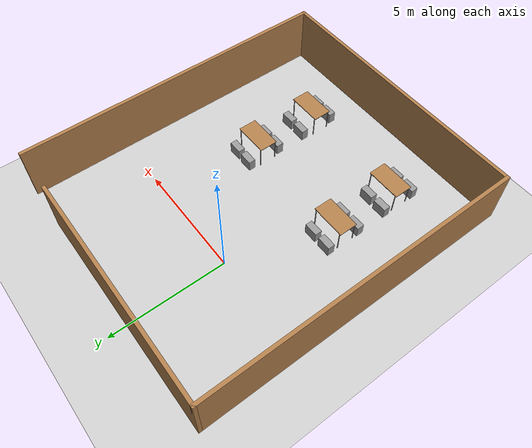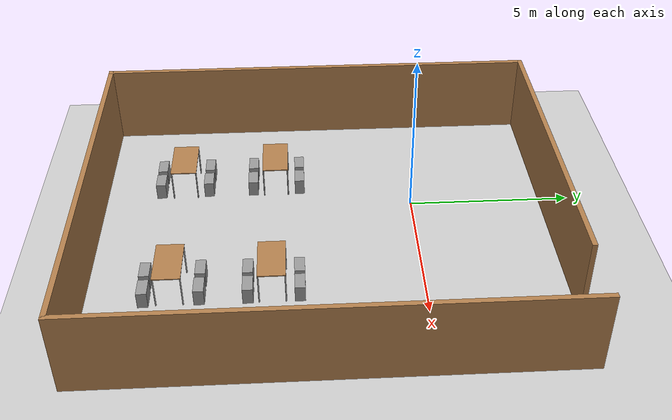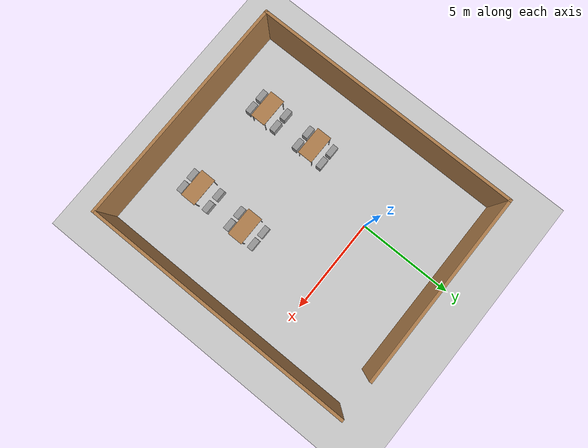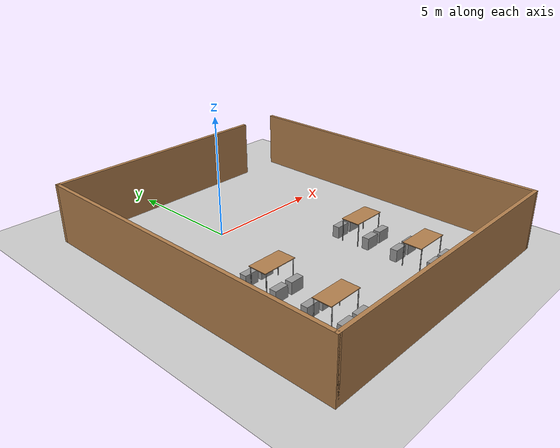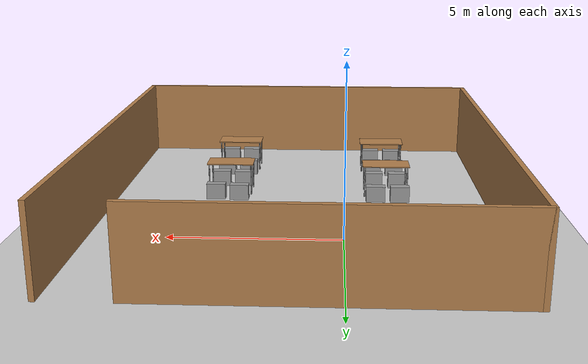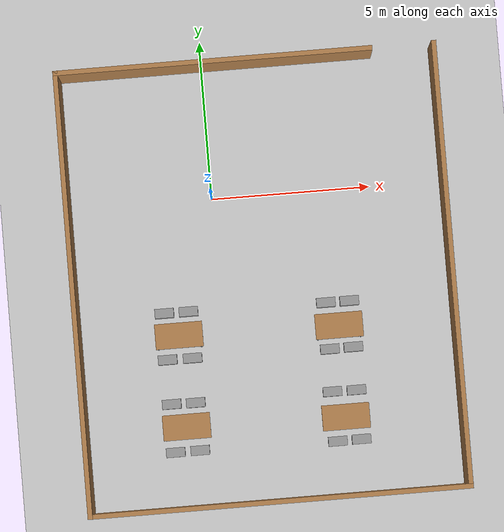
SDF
<sdf version="1.7">
 <world name="default">
  <model name="ground_plane">
   <static>1</static>
   <link name="link">
    <collision name="collision">
     <geometry><plane><normal>0 0 1</normal><size>100 100</size></plane></geometry>
     <surface><friction><ode><mu>100</mu><mu2>50</mu2></ode></friction></surface>
    </collision>
    <visual name="visual">
     <cast_shadows>0</cast_shadows>
     <geometry><plane><normal>0 0 1</normal><size>100 100</size></plane></geometry>
     <material>
      <script><uri>file://media/materials/scripts/gazebo.material</uri><name>Gazebo/Grey</name></script>
     </material>
    </visual>
   </link>
  </model>
  <model name="restaurent_walls">
   <pose>1.37943 -2.77335 0 0 -0 0</pose>
   <link name="Wall_2">
    <collision name="Wall_2_Collision">
     <geometry><box><size>10 0.15 2.5</size></box></geometry>
     <pose>0 0 1.25 0 -0 0</pose>
    </collision>
    <visual name="Wall_2_Visual">
     <pose>0 0 1.25 0 -0 0</pose>
     <geometry><box><size>10 0.15 2.5</size></box></geometry>
     <material>
      <script><uri>file://media/materials/scripts/gazebo.material</uri><name>Gazebo/Wood</name></script>
      <ambient>1 1 1 1</ambient>
     </material>
     <meta><layer>0</layer></meta>
    </visual>
    <pose>-1 6.925 0 0 -0 0</pose>
   </link>
   <link name="Wall_4">
    <collision name="Wall_4_Collision">
     <geometry><box><size>14 0.15 2.5</size></box></geometry>
     <pose>0 0 1.25 0 -0 0</pose>
    </collision>
    <visual name="Wall_4_Visual">
     <pose>0 0 1.25 0 -0 0</pose>
     <geometry><box><size>14 0.15 2.5</size></box></geometry>
     <material>
      <script><uri>file://media/materials/scripts/gazebo.material</uri><name>Gazebo/Wood</name></script>
      <ambient>1 1 1 1</ambient>
     </material>
     <meta><layer>0</layer></meta>
    </visual>
    <pose>-5.925 -0 0 0 -0 -1.5708</pose>
   </link>
   <link name="Wall_5">
    <collision name="Wall_5_Collision">
     <geometry><box><size>12 0.15 2.5</size></box></geometry>
     <pose>0 0 1.25 0 -0 0</pose>
    </collision>
    <visual name="Wall_5_Visual">
     <pose>0 0 1.25 0 -0 0</pose>
     <geometry><box><size>12 0.15 2.5</size></box></geometry>
     <material>
      <script><uri>file://media/materials/scripts/gazebo.material</uri><name>Gazebo/Wood</name></script>
      <ambient>1 1 1 1</ambient>
     </material>
     <meta><layer>0</layer></meta>
    </visual>
    <pose>-0 -6.925 0 0 -0 0</pose>
   </link>
   <link name="Wall_6">
    <collision name="Wall_6_Collision">
     <geometry><box><size>14 0.15 2.5</size></box></geometry>
     <pose>0 0 1.25 0 -0 0</pose>
    </collision>
    <visual name="Wall_6_Visual">
     <pose>0 0 1.25 0 -0 0</pose>
     <geometry><box><size>14 0.15 2.5</size></box></geometry>
     <material>
      <script><uri>file://media/materials/scripts/gazebo.material</uri><name>Gazebo/Wood</name></script>
      <ambient>1 1 1 1</ambient>
     </material>
     <meta><layer>0</layer></meta>
    </visual>
    <pose>5.925 -0 0 0 -0 1.5708</pose>
   </link>
   <static>1</static>
  </model>
  <model name="table_1">
   <static>1</static>
   <link name="link">
    <collision name="surface">
     <pose>0 0 1 0 -0 0</pose>
     <geometry><box><size>1.5 0.8 0.03</size></box></geometry>
     <surface><friction><ode><mu>0.6</mu><mu2>0.6</mu2></ode></friction></surface>
    </collision>
    <visual name="visual1">
     <pose>0 0 1 0 -0 0</pose>
     <geometry><box><size>1.5 0.8 0.03</size></box></geometry>
     <material>
      <script><uri>file://media/materials/scripts/gazebo.material</uri><name>Gazebo/Wood</name></script>
     </material>
    </visual>
    <collision name="front_left_leg">
     <pose>0.68 0.38 0.5 0 -0 0</pose>
     <geometry><cylinder><radius>0.02</radius><length>1</length></cylinder></geometry>
    </collision>
    <visual name="front_left_leg">
     <pose>0.68 0.38 0.5 0 -0 0</pose>
     <geometry><cylinder><radius>0.02</radius><length>1</length></cylinder></geometry>
     <material>
      <script><uri>file://media/materials/scripts/gazebo.material</uri><name>Gazebo/Grey</name></script>
     </material>
    </visual>
    <collision name="front_right_leg">
     <pose>0.68 -0.38 0.5 0 -0 0</pose>
     <geometry><cylinder><radius>0.02</radius><length>1</length></cylinder></geometry>
    </collision>
    <visual name="front_right_leg">
     <pose>0.68 -0.38 0.5 0 -0 0</pose>
     <geometry><cylinder><radius>0.02</radius><length>1</length></cylinder></geometry>
     <material>
      <script><uri>file://media/materials/scripts/gazebo.material</uri><name>Gazebo/Grey</name></script>
     </material>
    </visual>
    <collision name="back_right_leg">
     <pose>-0.68 -0.38 0.5 0 -0 0</pose>
     <geometry><cylinder><radius>0.02</radius><length>1</length></cylinder></geometry>
    </collision>
    <visual name="back_right_leg">
     <pose>-0.68 -0.38 0.5 0 -0 0</pose>
     <geometry><cylinder><radius>0.02</radius><length>1</length></cylinder></geometry>
     <material>
      <script><uri>file://media/materials/scripts/gazebo.material</uri><name>Gazebo/Grey</name></script>
     </material>
    </visual>
    <collision name="back_left_leg">
     <pose>-0.68 0.38 0.5 0 -0 0</pose>
     <geometry><cylinder><radius>0.02</radius><length>1</length></cylinder></geometry>
    </collision>
    <visual name="back_left_leg">
     <pose>-0.68 0.38 0.5 0 -0 0</pose>
     <geometry><cylinder><radius>0.02</radius><length>1</length></cylinder></geometry>
     <material>
      <script><uri>file://media/materials/scripts/gazebo.material</uri><name>Gazebo/Grey</name></script>
     </material>
    </visual>
   </link>
   <pose>-1.37961 -4.25534 0 0 -0 0</pose>
  </model>
  <model name="table_2">
   <static>1</static>
   <link name="link">
    <collision name="surface">
     <pose>0 0 1 0 -0 0</pose>
     <geometry><box><size>1.5 0.8 0.03</size></box></geometry>
     <surface><friction><ode><mu>0.6</mu><mu2>0.6</mu2></ode></friction></surface>
    </collision>
    <visual name="visual1">
     <pose>0 0 1 0 -0 0</pose>
     <geometry><box><size>1.5 0.8 0.03</size></box></geometry>
     <material>
      <script><uri>file://media/materials/scripts/gazebo.material</uri><name>Gazebo/Wood</name></script>
     </material>
    </visual>
    <collision name="front_left_leg">
     <pose>0.68 0.38 0.5 0 -0 0</pose>
     <geometry><cylinder><radius>0.02</radius><length>1</length></cylinder></geometry>
    </collision>
    <visual name="front_left_leg">
     <pose>0.68 0.38 0.5 0 -0 0</pose>
     <geometry><cylinder><radius>0.02</radius><length>1</length></cylinder></geometry>
     <material>
      <script><uri>file://media/materials/scripts/gazebo.material</uri><name>Gazebo/Grey</name></script>
     </material>
    </visual>
    <collision name="front_right_leg">
     <pose>0.68 -0.38 0.5 0 -0 0</pose>
     <geometry><cylinder><radius>0.02</radius><length>1</length></cylinder></geometry>
    </collision>
    <visual name="front_right_leg">
     <pose>0.68 -0.38 0.5 0 -0 0</pose>
     <geometry><cylinder><radius>0.02</radius><length>1</length></cylinder></geometry>
     <material>
      <script><uri>file://media/materials/scripts/gazebo.material</uri><name>Gazebo/Grey</name></script>
     </material>
    </visual>
    <collision name="back_right_leg">
     <pose>-0.68 -0.38 0.5 0 -0 0</pose>
     <geometry><cylinder><radius>0.02</radius><length>1</length></cylinder></geometry>
    </collision>
    <visual name="back_right_leg">
     <pose>-0.68 -0.38 0.5 0 -0 0</pose>
     <geometry><cylinder><radius>0.02</radius><length>1</length></cylinder></geometry>
     <material>
      <script><uri>file://media/materials/scripts/gazebo.material</uri><name>Gazebo/Grey</name></script>
     </material>
    </visual>
    <collision name="back_left_leg">
     <pose>-0.68 0.38 0.5 0 -0 0</pose>
     <geometry><cylinder><radius>0.02</radius><length>1</length></cylinder></geometry>
    </collision>
    <visual name="back_left_leg">
     <pose>-0.68 0.38 0.5 0 -0 0</pose>
     <geometry><cylinder><radius>0.02</radius><length>1</length></cylinder></geometry>
     <material>
      <script><uri>file://media/materials/scripts/gazebo.material</uri><name>Gazebo/Grey</name></script>
     </material>
    </visual>
   </link>
   <pose>-1.36569 -7.13557 0 0 -0 0</pose>
  </model>
  <model name="table_5">
   <static>1</static>
   <link name="link">
    <collision name="surface">
     <pose>0 0 1 0 -0 0</pose>
     <geometry><box><size>1.5 0.8 0.03</size></box></geometry>
     <surface><friction><ode><mu>0.6</mu><mu2>0.6</mu2></ode></friction></surface>
    </collision>
    <visual name="visual1">
     <pose>0 0 1 0 -0 0</pose>
     <geometry><box><size>1.5 0.8 0.03</size></box></geometry>
     <material>
      <script><uri>file://media/materials/scripts/gazebo.material</uri><name>Gazebo/Wood</name></script>
     </material>
    </visual>
    <collision name="front_left_leg">
     <pose>0.68 0.38 0.5 0 -0 0</pose>
     <geometry><cylinder><radius>0.02</radius><length>1</length></cylinder></geometry>
    </collision>
    <visual name="front_left_leg">
     <pose>0.68 0.38 0.5 0 -0 0</pose>
     <geometry><cylinder><radius>0.02</radius><length>1</length></cylinder></geometry>
     <material>
      <script><uri>file://media/materials/scripts/gazebo.material</uri><name>Gazebo/Grey</name></script>
     </material>
    </visual>
    <collision name="front_right_leg">
     <pose>0.68 -0.38 0.5 0 -0 0</pose>
     <geometry><cylinder><radius>0.02</radius><length>1</length></cylinder></geometry>
    </collision>
    <visual name="front_right_leg">
     <pose>0.68 -0.38 0.5 0 -0 0</pose>
     <geometry><cylinder><radius>0.02</radius><length>1</length></cylinder></geometry>
     <material>
      <script><uri>file://media/materials/scripts/gazebo.material</uri><name>Gazebo/Grey</name></script>
     </material>
    </visual>
    <collision name="back_right_leg">
     <pose>-0.68 -0.38 0.5 0 -0 0</pose>
     <geometry><cylinder><radius>0.02</radius><length>1</length></cylinder></geometry>
    </collision>
    <visual name="back_right_leg">
     <pose>-0.68 -0.38 0.5 0 -0 0</pose>
     <geometry><cylinder><radius>0.02</radius><length>1</length></cylinder></geometry>
     <material>
      <script><uri>file://media/materials/scripts/gazebo.material</uri><name>Gazebo/Grey</name></script>
     </material>
    </visual>
    <collision name="back_left_leg">
     <pose>-0.68 0.38 0.5 0 -0 0</pose>
     <geometry><cylinder><radius>0.02</radius><length>1</length></cylinder></geometry>
    </collision>
    <visual name="back_left_leg">
     <pose>-0.68 0.38 0.5 0 -0 0</pose>
     <geometry><cylinder><radius>0.02</radius><length>1</length></cylinder></geometry>
     <material>
      <script><uri>file://media/materials/scripts/gazebo.material</uri><name>Gazebo/Grey</name></script>
     </material>
    </visual>
   </link>
   <pose>3.66552 -4.34774 0 0 -0 0</pose>
  </model>
  <model name="table_6">
   <static>1</static>
   <link name="link">
    <collision name="surface">
     <pose>0 0 1 0 -0 0</pose>
     <geometry><box><size>1.5 0.8 0.03</size></box></geometry>
     <surface><friction><ode><mu>0.6</mu><mu2>0.6</mu2></ode></friction></surface>
    </collision>
    <visual name="visual1">
     <pose>0 0 1 0 -0 0</pose>
     <geometry><box><size>1.5 0.8 0.03</size></box></geometry>
     <material>
      <script><uri>file://media/materials/scripts/gazebo.material</uri><name>Gazebo/Wood</name></script>
     </material>
    </visual>
    <collision name="front_left_leg">
     <pose>0.68 0.38 0.5 0 -0 0</pose>
     <geometry><cylinder><radius>0.02</radius><length>1</length></cylinder></geometry>
    </collision>
    <visual name="front_left_leg">
     <pose>0.68 0.38 0.5 0 -0 0</pose>
     <geometry><cylinder><radius>0.02</radius><length>1</length></cylinder></geometry>
     <material>
      <script><uri>file://media/materials/scripts/gazebo.material</uri><name>Gazebo/Grey</name></script>
     </material>
    </visual>
    <collision name="front_right_leg">
     <pose>0.68 -0.38 0.5 0 -0 0</pose>
     <geometry><cylinder><radius>0.02</radius><length>1</length></cylinder></geometry>
    </collision>
    <visual name="front_right_leg">
     <pose>0.68 -0.38 0.5 0 -0 0</pose>
     <geometry><cylinder><radius>0.02</radius><length>1</length></cylinder></geometry>
     <material>
      <script><uri>file://media/materials/scripts/gazebo.material</uri><name>Gazebo/Grey</name></script>
     </material>
    </visual>
    <collision name="back_right_leg">
     <pose>-0.68 -0.38 0.5 0 -0 0</pose>
     <geometry><cylinder><radius>0.02</radius><length>1</length></cylinder></geometry>
    </collision>
    <visual name="back_right_leg">
     <pose>-0.68 -0.38 0.5 0 -0 0</pose>
     <geometry><cylinder><radius>0.02</radius><length>1</length></cylinder></geometry>
     <material>
      <script><uri>file://media/materials/scripts/gazebo.material</uri><name>Gazebo/Grey</name></script>
     </material>
    </visual>
    <collision name="back_left_leg">
     <pose>-0.68 0.38 0.5 0 -0 0</pose>
     <geometry><cylinder><radius>0.02</radius><length>1</length></cylinder></geometry>
    </collision>
    <visual name="back_left_leg">
     <pose>-0.68 0.38 0.5 0 -0 0</pose>
     <geometry><cylinder><radius>0.02</radius><length>1</length></cylinder></geometry>
     <material>
      <script><uri>file://media/materials/scripts/gazebo.material</uri><name>Gazebo/Grey</name></script>
     </material>
    </visual>
   </link>
   <pose>3.64793 -7.22796 0 0 -0 0</pose>
  </model>
  <model name="chair">
   <link name="link">
    <inertial>
     <mass>1</mass>
     <inertia>
      <ixx>0.166667</ixx>
      <ixy>0</ixy>
      <ixz>0</ixz>
      <iyy>0.166667</iyy>
      <iyz>0</iyz>
      <izz>0.166667</izz>
     </inertia>
    </inertial>
    <visual name="visual">
     <geometry><box><size>0.6 0.3 0.5</size></box></geometry>
     <material>
      <script><name>Gazebo/Grey</name><uri>file://media/materials/scripts/gazebo.material</uri></script>
      <shader type="pixel"><normal_map>__default__</normal_map></shader>
      <ambient>0.3 0.3 0.3 1</ambient>
      <diffuse>0.7 0.7 0.7 1</diffuse>
      <specular>0.01 0.01 0.01 1</specular>
      <emissive>0.2 0.6 0 1</emissive>
     </material>
    </visual>
    <collision name="collision">
     <geometry><box><size>0.6 0.3 0.5</size></box></geometry>
     <surface>
      <friction>
       <ode><mu>1</mu><mu2>1</mu2><fdir1>0 0 0</fdir1><slip1>0</slip1><slip2>0</slip2></ode>
       <torsional>
        <coefficient>1</coefficient>
        <patch_radius>0</patch_radius>
        <surface_radius>0</surface_radius>
        <use_patch_radius>1</use_patch_radius>
        <ode><slip>0</slip></ode>
       </torsional>
      </friction>
      <bounce><restitution_coefficient>0</restitution_coefficient><threshold>1e+06</threshold></bounce>
      <contact>
       <collide_without_contact>0</collide_without_contact>
       <collide_without_contact_bitmask>1</collide_without_contact_bitmask>
       <collide_bitmask>1</collide_bitmask>
       <ode>
        <soft_cfm>0</soft_cfm>
        <soft_erp>0.2</soft_erp>
        <kp>1e+13</kp>
        <kd>1</kd>
        <max_vel>0.01</max_vel>
        <min_depth>0</min_depth>
       </ode>
       <bullet>
        <split_impulse>1</split_impulse>
        <split_impulse_penetration_threshold>-0.01</split_impulse_penetration_threshold>
        <soft_cfm>0</soft_cfm>
        <soft_erp>0.2</soft_erp>
        <kp>1e+13</kp>
        <kd>1</kd>
       </bullet>
      </contact>
     </surface>
    </collision>
   </link>
   <static>0</static>
   <pose>4.06254 -6.4022 0.241541 0 -0 0</pose>
  </model>
  <model name="chair_clone_2">
   <link name="link">
    <inertial>
     <mass>1</mass>
     <inertia>
      <ixx>0.166667</ixx>
      <ixy>0</ixy>
      <ixz>0</ixz>
      <iyy>0.166667</iyy>
      <iyz>0</iyz>
      <izz>0.166667</izz>
     </inertia>
    </inertial>
    <visual name="visual">
     <geometry><box><size>0.6 0.3 0.5</size></box></geometry>
     <material>
      <script><name>Gazebo/Grey</name><uri>file://media/materials/scripts/gazebo.material</uri></script>
      <shader type="pixel"><normal_map>__default__</normal_map></shader>
      <ambient>0.3 0.3 0.3 1</ambient>
      <diffuse>0.7 0.7 0.7 1</diffuse>
      <specular>0.01 0.01 0.01 1</specular>
      <emissive>0.2 0.6 0 1</emissive>
     </material>
    </visual>
    <collision name="collision">
     <geometry><box><size>0.6 0.3 0.5</size></box></geometry>
     <surface>
      <friction>
       <ode><mu>1</mu><mu2>1</mu2><fdir1>0 0 0</fdir1><slip1>0</slip1><slip2>0</slip2></ode>
       <torsional>
        <coefficient>1</coefficient>
        <patch_radius>0</patch_radius>
        <surface_radius>0</surface_radius>
        <use_patch_radius>1</use_patch_radius>
        <ode><slip>0</slip></ode>
       </torsional>
      </friction>
      <bounce><restitution_coefficient>0</restitution_coefficient><threshold>1e+06</threshold></bounce>
      <contact>
       <collide_without_contact>0</collide_without_contact>
       <collide_without_contact_bitmask>1</collide_without_contact_bitmask>
       <collide_bitmask>1</collide_bitmask>
       <ode>
        <soft_cfm>0</soft_cfm>
        <soft_erp>0.2</soft_erp>
        <kp>1e+13</kp>
        <kd>1</kd>
        <max_vel>0.01</max_vel>
        <min_depth>0</min_depth>
       </ode>
       <bullet>
        <split_impulse>1</split_impulse>
        <split_impulse_penetration_threshold>-0.01</split_impulse_penetration_threshold>
        <soft_cfm>0</soft_cfm>
        <soft_erp>0.2</soft_erp>
        <kp>1e+13</kp>
        <kd>1</kd>
       </bullet>
      </contact>
     </surface>
    </collision>
   </link>
   <static>0</static>
   <pose>-1.03447 -6.39345 0.242909 0 -0 0</pose>
  </model>
  <model name="chair_clone">
   <link name="link">
    <inertial>
     <mass>1</mass>
     <inertia>
      <ixx>0.166667</ixx>
      <ixy>0</ixy>
      <ixz>0</ixz>
      <iyy>0.166667</iyy>
      <iyz>0</iyz>
      <izz>0.166667</izz>
     </inertia>
    </inertial>
    <visual name="visual">
     <geometry><box><size>0.6 0.3 0.5</size></box></geometry>
     <material>
      <script><name>Gazebo/Grey</name><uri>file://media/materials/scripts/gazebo.material</uri></script>
      <shader type="pixel"><normal_map>__default__</normal_map></shader>
      <ambient>0.3 0.3 0.3 1</ambient>
      <diffuse>0.7 0.7 0.7 1</diffuse>
      <specular>0.01 0.01 0.01 1</specular>
      <emissive>0.2 0.6 0 1</emissive>
     </material>
    </visual>
    <collision name="collision">
     <geometry><box><size>0.6 0.3 0.5</size></box></geometry>
     <surface>
      <friction>
       <ode><mu>1</mu><mu2>1</mu2><fdir1>0 0 0</fdir1><slip1>0</slip1><slip2>0</slip2></ode>
       <torsional>
        <coefficient>1</coefficient>
        <patch_radius>0</patch_radius>
        <surface_radius>0</surface_radius>
        <use_patch_radius>1</use_patch_radius>
        <ode><slip>0</slip></ode>
       </torsional>
      </friction>
      <bounce><restitution_coefficient>0</restitution_coefficient><threshold>1e+06</threshold></bounce>
      <contact>
       <collide_without_contact>0</collide_without_contact>
       <collide_without_contact_bitmask>1</collide_without_contact_bitmask>
       <collide_bitmask>1</collide_bitmask>
       <ode>
        <soft_cfm>0</soft_cfm>
        <soft_erp>0.2</soft_erp>
        <kp>1e+13</kp>
        <kd>1</kd>
        <max_vel>0.01</max_vel>
        <min_depth>0</min_depth>
       </ode>
       <bullet>
        <split_impulse>1</split_impulse>
        <split_impulse_penetration_threshold>-0.01</split_impulse_penetration_threshold>
        <soft_cfm>0</soft_cfm>
        <soft_erp>0.2</soft_erp>
        <kp>1e+13</kp>
        <kd>1</kd>
       </bullet>
      </contact>
     </surface>
    </collision>
   </link>
   <static>0</static>
   <pose>3.30174 -6.39577 0.238371 0 -0 0</pose>
  </model>
  <model name="chair_clone_0">
   <link name="link">
    <inertial>
     <mass>1</mass>
     <inertia>
      <ixx>0.166667</ixx>
      <ixy>0</ixy>
      <ixz>0</ixz>
      <iyy>0.166667</iyy>
      <iyz>0</iyz>
      <izz>0.166667</izz>
     </inertia>
    </inertial>
    <visual name="visual">
     <geometry><box><size>0.6 0.3 0.5</size></box></geometry>
     <material>
      <script><name>Gazebo/Grey</name><uri>file://media/materials/scripts/gazebo.material</uri></script>
      <shader type="pixel"><normal_map>__default__</normal_map></shader>
      <ambient>0.3 0.3 0.3 1</ambient>
      <diffuse>0.7 0.7 0.7 1</diffuse>
      <specular>0.01 0.01 0.01 1</specular>
      <emissive>0.2 0.6 0 1</emissive>
     </material>
    </visual>
    <collision name="collision">
     <geometry><box><size>0.6 0.3 0.5</size></box></geometry>
     <surface>
      <friction>
       <ode><mu>1</mu><mu2>1</mu2><fdir1>0 0 0</fdir1><slip1>0</slip1><slip2>0</slip2></ode>
       <torsional>
        <coefficient>1</coefficient>
        <patch_radius>0</patch_radius>
        <surface_radius>0</surface_radius>
        <use_patch_radius>1</use_patch_radius>
        <ode><slip>0</slip></ode>
       </torsional>
      </friction>
      <bounce><restitution_coefficient>0</restitution_coefficient><threshold>1e+06</threshold></bounce>
      <contact>
       <collide_without_contact>0</collide_without_contact>
       <collide_without_contact_bitmask>1</collide_without_contact_bitmask>
       <collide_bitmask>1</collide_bitmask>
       <ode>
        <soft_cfm>0</soft_cfm>
        <soft_erp>0.2</soft_erp>
        <kp>1e+13</kp>
        <kd>1</kd>
        <max_vel>0.01</max_vel>
        <min_depth>0</min_depth>
       </ode>
       <bullet>
        <split_impulse>1</split_impulse>
        <split_impulse_penetration_threshold>-0.01</split_impulse_penetration_threshold>
        <soft_cfm>0</soft_cfm>
        <soft_erp>0.2</soft_erp>
        <kp>1e+13</kp>
        <kd>1</kd>
       </bullet>
      </contact>
     </surface>
    </collision>
   </link>
   <static>0</static>
   <pose>3.34323 -7.97211 0.245737 0 -0 0</pose>
  </model>
  <model name="chair_clone_1">
   <link name="link">
    <inertial>
     <mass>1</mass>
     <inertia>
      <ixx>0.166667</ixx>
      <ixy>0</ixy>
      <ixz>0</ixz>
      <iyy>0.166667</iyy>
      <iyz>0</iyz>
      <izz>0.166667</izz>
     </inertia>
    </inertial>
    <visual name="visual">
     <geometry><box><size>0.6 0.3 0.5</size></box></geometry>
     <material>
      <script><name>Gazebo/Grey</name><uri>file://media/materials/scripts/gazebo.material</uri></script>
      <shader type="pixel"><normal_map>__default__</normal_map></shader>
      <ambient>0.3 0.3 0.3 1</ambient>
      <diffuse>0.7 0.7 0.7 1</diffuse>
      <specular>0.01 0.01 0.01 1</specular>
      <emissive>0.2 0.6 0 1</emissive>
     </material>
    </visual>
    <collision name="collision">
     <geometry><box><size>0.6 0.3 0.5</size></box></geometry>
     <surface>
      <friction>
       <ode><mu>1</mu><mu2>1</mu2><fdir1>0 0 0</fdir1><slip1>0</slip1><slip2>0</slip2></ode>
       <torsional>
        <coefficient>1</coefficient>
        <patch_radius>0</patch_radius>
        <surface_radius>0</surface_radius>
        <use_patch_radius>1</use_patch_radius>
        <ode><slip>0</slip></ode>
       </torsional>
      </friction>
      <bounce><restitution_coefficient>0</restitution_coefficient><threshold>1e+06</threshold></bounce>
      <contact>
       <collide_without_contact>0</collide_without_contact>
       <collide_without_contact_bitmask>1</collide_without_contact_bitmask>
       <collide_bitmask>1</collide_bitmask>
       <ode>
        <soft_cfm>0</soft_cfm>
        <soft_erp>0.2</soft_erp>
        <kp>1e+13</kp>
        <kd>1</kd>
        <max_vel>0.01</max_vel>
        <min_depth>0</min_depth>
       </ode>
       <bullet>
        <split_impulse>1</split_impulse>
        <split_impulse_penetration_threshold>-0.01</split_impulse_penetration_threshold>
        <soft_cfm>0</soft_cfm>
        <soft_erp>0.2</soft_erp>
        <kp>1e+13</kp>
        <kd>1</kd>
       </bullet>
      </contact>
     </surface>
    </collision>
   </link>
   <static>0</static>
   <pose>4.09259 -7.96309 0.246409 0 -0 0</pose>
  </model>
  <model name="chair_clone_3">
   <link name="link">
    <inertial>
     <mass>1</mass>
     <inertia>
      <ixx>0.166667</ixx>
      <ixy>0</ixy>
      <ixz>0</ixz>
      <iyy>0.166667</iyy>
      <iyz>0</iyz>
      <izz>0.166667</izz>
     </inertia>
    </inertial>
    <visual name="visual">
     <geometry><box><size>0.6 0.3 0.5</size></box></geometry>
     <material>
      <script><name>Gazebo/Grey</name><uri>file://media/materials/scripts/gazebo.material</uri></script>
      <shader type="pixel"><normal_map>__default__</normal_map></shader>
      <ambient>0.3 0.3 0.3 1</ambient>
      <diffuse>0.7 0.7 0.7 1</diffuse>
      <specular>0.01 0.01 0.01 1</specular>
      <emissive>0.2 0.6 0 1</emissive>
     </material>
    </visual>
    <collision name="collision">
     <geometry><box><size>0.6 0.3 0.5</size></box></geometry>
     <surface>
      <friction>
       <ode><mu>1</mu><mu2>1</mu2><fdir1>0 0 0</fdir1><slip1>0</slip1><slip2>0</slip2></ode>
       <torsional>
        <coefficient>1</coefficient>
        <patch_radius>0</patch_radius>
        <surface_radius>0</surface_radius>
        <use_patch_radius>1</use_patch_radius>
        <ode><slip>0</slip></ode>
       </torsional>
      </friction>
      <bounce><restitution_coefficient>0</restitution_coefficient><threshold>1e+06</threshold></bounce>
      <contact>
       <collide_without_contact>0</collide_without_contact>
       <collide_without_contact_bitmask>1</collide_without_contact_bitmask>
       <collide_bitmask>1</collide_bitmask>
       <ode>
        <soft_cfm>0</soft_cfm>
        <soft_erp>0.2</soft_erp>
        <kp>1e+13</kp>
        <kd>1</kd>
        <max_vel>0.01</max_vel>
        <min_depth>0</min_depth>
       </ode>
       <bullet>
        <split_impulse>1</split_impulse>
        <split_impulse_penetration_threshold>-0.01</split_impulse_penetration_threshold>
        <soft_cfm>0</soft_cfm>
        <soft_erp>0.2</soft_erp>
        <kp>1e+13</kp>
        <kd>1</kd>
       </bullet>
      </contact>
     </surface>
    </collision>
   </link>
   <static>0</static>
   <pose>-1.01301 -7.90541 0.244469 0 -0 0</pose>
  </model>
  <model name="chair_clone_4">
   <link name="link">
    <inertial>
     <mass>1</mass>
     <inertia>
      <ixx>0.166667</ixx>
      <ixy>0</ixy>
      <ixz>0</ixz>
      <iyy>0.166667</iyy>
      <iyz>0</iyz>
      <izz>0.166667</izz>
     </inertia>
    </inertial>
    <visual name="visual">
     <geometry><box><size>0.6 0.3 0.5</size></box></geometry>
     <material>
      <script><name>Gazebo/Grey</name><uri>file://media/materials/scripts/gazebo.material</uri></script>
      <shader type="pixel"><normal_map>__default__</normal_map></shader>
      <ambient>0.3 0.3 0.3 1</ambient>
      <diffuse>0.7 0.7 0.7 1</diffuse>
      <specular>0.01 0.01 0.01 1</specular>
      <emissive>0.2 0.6 0 1</emissive>
     </material>
    </visual>
    <collision name="collision">
     <geometry><box><size>0.6 0.3 0.5</size></box></geometry>
     <surface>
      <friction>
       <ode><mu>1</mu><mu2>1</mu2><fdir1>0 0 0</fdir1><slip1>0</slip1><slip2>0</slip2></ode>
       <torsional>
        <coefficient>1</coefficient>
        <patch_radius>0</patch_radius>
        <surface_radius>0</surface_radius>
        <use_patch_radius>1</use_patch_radius>
        <ode><slip>0</slip></ode>
       </torsional>
      </friction>
      <bounce><restitution_coefficient>0</restitution_coefficient><threshold>1e+06</threshold></bounce>
      <contact>
       <collide_without_contact>0</collide_without_contact>
       <collide_without_contact_bitmask>1</collide_without_contact_bitmask>
       <collide_bitmask>1</collide_bitmask>
       <ode>
        <soft_cfm>0</soft_cfm>
        <soft_erp>0.2</soft_erp>
        <kp>1e+13</kp>
        <kd>1</kd>
        <max_vel>0.01</max_vel>
        <min_depth>0</min_depth>
       </ode>
       <bullet>
        <split_impulse>1</split_impulse>
        <split_impulse_penetration_threshold>-0.01</split_impulse_penetration_threshold>
        <soft_cfm>0</soft_cfm>
        <soft_erp>0.2</soft_erp>
        <kp>1e+13</kp>
        <kd>1</kd>
       </bullet>
      </contact>
     </surface>
    </collision>
   </link>
   <static>0</static>
   <pose>-1.78908 -7.90826 0.23989 0 -0 0</pose>
  </model>
  <model name="chair_clone_5">
   <link name="link">
    <inertial>
     <mass>1</mass>
     <inertia>
      <ixx>0.166667</ixx>
      <ixy>0</ixy>
      <ixz>0</ixz>
      <iyy>0.166667</iyy>
      <iyz>0</iyz>
      <izz>0.166667</izz>
     </inertia>
    </inertial>
    <visual name="visual">
     <geometry><box><size>0.6 0.3 0.5</size></box></geometry>
     <material>
      <script><name>Gazebo/Grey</name><uri>file://media/materials/scripts/gazebo.material</uri></script>
      <shader type="pixel"><normal_map>__default__</normal_map></shader>
      <ambient>0.3 0.3 0.3 1</ambient>
      <diffuse>0.7 0.7 0.7 1</diffuse>
      <specular>0.01 0.01 0.01 1</specular>
      <emissive>0.2 0.6 0 1</emissive>
     </material>
    </visual>
    <collision name="collision">
     <geometry><box><size>0.6 0.3 0.5</size></box></geometry>
     <surface>
      <friction>
       <ode><mu>1</mu><mu2>1</mu2><fdir1>0 0 0</fdir1><slip1>0</slip1><slip2>0</slip2></ode>
       <torsional>
        <coefficient>1</coefficient>
        <patch_radius>0</patch_radius>
        <surface_radius>0</surface_radius>
        <use_patch_radius>1</use_patch_radius>
        <ode><slip>0</slip></ode>
       </torsional>
      </friction>
      <bounce><restitution_coefficient>0</restitution_coefficient><threshold>1e+06</threshold></bounce>
      <contact>
       <collide_without_contact>0</collide_without_contact>
       <collide_without_contact_bitmask>1</collide_without_contact_bitmask>
       <collide_bitmask>1</collide_bitmask>
       <ode>
        <soft_cfm>0</soft_cfm>
        <soft_erp>0.2</soft_erp>
        <kp>1e+13</kp>
        <kd>1</kd>
        <max_vel>0.01</max_vel>
        <min_depth>0</min_depth>
       </ode>
       <bullet>
        <split_impulse>1</split_impulse>
        <split_impulse_penetration_threshold>-0.01</split_impulse_penetration_threshold>
        <soft_cfm>0</soft_cfm>
        <soft_erp>0.2</soft_erp>
        <kp>1e+13</kp>
        <kd>1</kd>
       </bullet>
      </contact>
     </surface>
    </collision>
   </link>
   <static>0</static>
   <pose>-1.79411 -6.38259 0.248727 0 -0 0</pose>
  </model>
  <model name="chair_clone_6">
   <link name="link">
    <inertial>
     <mass>1</mass>
     <inertia>
      <ixx>0.166667</ixx>
      <ixy>0</ixy>
      <ixz>0</ixz>
      <iyy>0.166667</iyy>
      <iyz>0</iyz>
      <izz>0.166667</izz>
     </inertia>
    </inertial>
    <visual name="visual">
     <geometry><box><size>0.6 0.3 0.5</size></box></geometry>
     <material>
      <script><name>Gazebo/Grey</name><uri>file://media/materials/scripts/gazebo.material</uri></script>
      <shader type="pixel"><normal_map>__default__</normal_map></shader>
      <ambient>0.3 0.3 0.3 1</ambient>
      <diffuse>0.7 0.7 0.7 1</diffuse>
      <specular>0.01 0.01 0.01 1</specular>
      <emissive>0.2 0.6 0 1</emissive>
     </material>
    </visual>
    <collision name="collision">
     <geometry><box><size>0.6 0.3 0.5</size></box></geometry>
     <surface>
      <friction>
       <ode><mu>1</mu><mu2>1</mu2><fdir1>0 0 0</fdir1><slip1>0</slip1><slip2>0</slip2></ode>
       <torsional>
        <coefficient>1</coefficient>
        <patch_radius>0</patch_radius>
        <surface_radius>0</surface_radius>
        <use_patch_radius>1</use_patch_radius>
        <ode><slip>0</slip></ode>
       </torsional>
      </friction>
      <bounce><restitution_coefficient>0</restitution_coefficient><threshold>1e+06</threshold></bounce>
      <contact>
       <collide_without_contact>0</collide_without_contact>
       <collide_without_contact_bitmask>1</collide_without_contact_bitmask>
       <collide_bitmask>1</collide_bitmask>
       <ode>
        <soft_cfm>0</soft_cfm>
        <soft_erp>0.2</soft_erp>
        <kp>1e+13</kp>
        <kd>1</kd>
        <max_vel>0.01</max_vel>
        <min_depth>0</min_depth>
       </ode>
       <bullet>
        <split_impulse>1</split_impulse>
        <split_impulse_penetration_threshold>-0.01</split_impulse_penetration_threshold>
        <soft_cfm>0</soft_cfm>
        <soft_erp>0.2</soft_erp>
        <kp>1e+13</kp>
        <kd>1</kd>
       </bullet>
      </contact>
     </surface>
    </collision>
   </link>
   <static>0</static>
   <pose>3.331 -5.04917 0.238846 0 -0 0</pose>
  </model>
  <model name="chair_clone_7">
   <link name="link">
    <inertial>
     <mass>1</mass>
     <inertia>
      <ixx>0.166667</ixx>
      <ixy>0</ixy>
      <ixz>0</ixz>
      <iyy>0.166667</iyy>
      <iyz>0</iyz>
      <izz>0.166667</izz>
     </inertia>
    </inertial>
    <visual name="visual">
     <geometry><box><size>0.6 0.3 0.5</size></box></geometry>
     <material>
      <script><name>Gazebo/Grey</name><uri>file://media/materials/scripts/gazebo.material</uri></script>
      <shader type="pixel"><normal_map>__default__</normal_map></shader>
      <ambient>0.3 0.3 0.3 1</ambient>
      <diffuse>0.7 0.7 0.7 1</diffuse>
      <specular>0.01 0.01 0.01 1</specular>
      <emissive>0.2 0.6 0 1</emissive>
     </material>
    </visual>
    <collision name="collision">
     <geometry><box><size>0.6 0.3 0.5</size></box></geometry>
     <surface>
      <friction>
       <ode><mu>1</mu><mu2>1</mu2><fdir1>0 0 0</fdir1><slip1>0</slip1><slip2>0</slip2></ode>
       <torsional>
        <coefficient>1</coefficient>
        <patch_radius>0</patch_radius>
        <surface_radius>0</surface_radius>
        <use_patch_radius>1</use_patch_radius>
        <ode><slip>0</slip></ode>
       </torsional>
      </friction>
      <bounce><restitution_coefficient>0</restitution_coefficient><threshold>1e+06</threshold></bounce>
      <contact>
       <collide_without_contact>0</collide_without_contact>
       <collide_without_contact_bitmask>1</collide_without_contact_bitmask>
       <collide_bitmask>1</collide_bitmask>
       <ode>
        <soft_cfm>0</soft_cfm>
        <soft_erp>0.2</soft_erp>
        <kp>1e+13</kp>
        <kd>1</kd>
        <max_vel>0.01</max_vel>
        <min_depth>0</min_depth>
       </ode>
       <bullet>
        <split_impulse>1</split_impulse>
        <split_impulse_penetration_threshold>-0.01</split_impulse_penetration_threshold>
        <soft_cfm>0</soft_cfm>
        <soft_erp>0.2</soft_erp>
        <kp>1e+13</kp>
        <kd>1</kd>
       </bullet>
      </contact>
     </surface>
    </collision>
   </link>
   <static>0</static>
   <pose>4.07745 -5.03982 0.244836 0 -0 0</pose>
  </model>
  <model name="chair_clone_8">
   <link name="link">
    <inertial>
     <mass>1</mass>
     <inertia>
      <ixx>0.166667</ixx>
      <ixy>0</ixy>
      <ixz>0</ixz>
      <iyy>0.166667</iyy>
      <iyz>0</iyz>
      <izz>0.166667</izz>
     </inertia>
    </inertial>
    <visual name="visual">
     <geometry><box><size>0.6 0.3 0.5</size></box></geometry>
     <material>
      <script><name>Gazebo/Grey</name><uri>file://media/materials/scripts/gazebo.material</uri></script>
      <shader type="pixel"><normal_map>__default__</normal_map></shader>
      <ambient>0.3 0.3 0.3 1</ambient>
      <diffuse>0.7 0.7 0.7 1</diffuse>
      <specular>0.01 0.01 0.01 1</specular>
      <emissive>0.2 0.6 0 1</emissive>
     </material>
    </visual>
    <collision name="collision">
     <geometry><box><size>0.6 0.3 0.5</size></box></geometry>
     <surface>
      <friction>
       <ode><mu>1</mu><mu2>1</mu2><fdir1>0 0 0</fdir1><slip1>0</slip1><slip2>0</slip2></ode>
       <torsional>
        <coefficient>1</coefficient>
        <patch_radius>0</patch_radius>
        <surface_radius>0</surface_radius>
        <use_patch_radius>1</use_patch_radius>
        <ode><slip>0</slip></ode>
       </torsional>
      </friction>
      <bounce><restitution_coefficient>0</restitution_coefficient><threshold>1e+06</threshold></bounce>
      <contact>
       <collide_without_contact>0</collide_without_contact>
       <collide_without_contact_bitmask>1</collide_without_contact_bitmask>
       <collide_bitmask>1</collide_bitmask>
       <ode>
        <soft_cfm>0</soft_cfm>
        <soft_erp>0.2</soft_erp>
        <kp>1e+13</kp>
        <kd>1</kd>
        <max_vel>0.01</max_vel>
        <min_depth>0</min_depth>
       </ode>
       <bullet>
        <split_impulse>1</split_impulse>
        <split_impulse_penetration_threshold>-0.01</split_impulse_penetration_threshold>
        <soft_cfm>0</soft_cfm>
        <soft_erp>0.2</soft_erp>
        <kp>1e+13</kp>
        <kd>1</kd>
       </bullet>
      </contact>
     </surface>
    </collision>
   </link>
   <static>0</static>
   <pose>4.06797 -3.574 0.248103 0 -0 0</pose>
  </model>
  <model name="chair_clone_10">
   <link name="link">
    <inertial>
     <mass>1</mass>
     <inertia>
      <ixx>0.166667</ixx>
      <ixy>0</ixy>
      <ixz>0</ixz>
      <iyy>0.166667</iyy>
      <iyz>0</iyz>
      <izz>0.166667</izz>
     </inertia>
    </inertial>
    <visual name="visual">
     <geometry><box><size>0.6 0.3 0.5</size></box></geometry>
     <material>
      <script><name>Gazebo/Grey</name><uri>file://media/materials/scripts/gazebo.material</uri></script>
      <shader type="pixel"><normal_map>__default__</normal_map></shader>
      <ambient>0.3 0.3 0.3 1</ambient>
      <diffuse>0.7 0.7 0.7 1</diffuse>
      <specular>0.01 0.01 0.01 1</specular>
      <emissive>0.2 0.6 0 1</emissive>
     </material>
    </visual>
    <collision name="collision">
     <geometry><box><size>0.6 0.3 0.5</size></box></geometry>
     <surface>
      <friction>
       <ode><mu>1</mu><mu2>1</mu2><fdir1>0 0 0</fdir1><slip1>0</slip1><slip2>0</slip2></ode>
       <torsional>
        <coefficient>1</coefficient>
        <patch_radius>0</patch_radius>
        <surface_radius>0</surface_radius>
        <use_patch_radius>1</use_patch_radius>
        <ode><slip>0</slip></ode>
       </torsional>
      </friction>
      <bounce><restitution_coefficient>0</restitution_coefficient><threshold>1e+06</threshold></bounce>
      <contact>
       <collide_without_contact>0</collide_without_contact>
       <collide_without_contact_bitmask>1</collide_without_contact_bitmask>
       <collide_bitmask>1</collide_bitmask>
       <ode>
        <soft_cfm>0</soft_cfm>
        <soft_erp>0.2</soft_erp>
        <kp>1e+13</kp>
        <kd>1</kd>
        <max_vel>0.01</max_vel>
        <min_depth>0</min_depth>
       </ode>
       <bullet>
        <split_impulse>1</split_impulse>
        <split_impulse_penetration_threshold>-0.01</split_impulse_penetration_threshold>
        <soft_cfm>0</soft_cfm>
        <soft_erp>0.2</soft_erp>
        <kp>1e+13</kp>
        <kd>1</kd>
       </bullet>
      </contact>
     </surface>
    </collision>
   </link>
   <static>0</static>
   <pose>-1.02007 -4.98027 0.242054 0 -0 0</pose>
  </model>
  <model name="chair_clone_11">
   <link name="link">
    <inertial>
     <mass>1</mass>
     <inertia>
      <ixx>0.166667</ixx>
      <ixy>0</ixy>
      <ixz>0</ixz>
      <iyy>0.166667</iyy>
      <iyz>0</iyz>
      <izz>0.166667</izz>
     </inertia>
    </inertial>
    <visual name="visual">
     <geometry><box><size>0.6 0.3 0.5</size></box></geometry>
     <material>
      <script><name>Gazebo/Grey</name><uri>file://media/materials/scripts/gazebo.material</uri></script>
      <shader type="pixel"><normal_map>__default__</normal_map></shader>
      <ambient>0.3 0.3 0.3 1</ambient>
      <diffuse>0.7 0.7 0.7 1</diffuse>
      <specular>0.01 0.01 0.01 1</specular>
      <emissive>0.2 0.6 0 1</emissive>
     </material>
    </visual>
    <collision name="collision">
     <geometry><box><size>0.6 0.3 0.5</size></box></geometry>
     <surface>
      <friction>
       <ode><mu>1</mu><mu2>1</mu2><fdir1>0 0 0</fdir1><slip1>0</slip1><slip2>0</slip2></ode>
       <torsional>
        <coefficient>1</coefficient>
        <patch_radius>0</patch_radius>
        <surface_radius>0</surface_radius>
        <use_patch_radius>1</use_patch_radius>
        <ode><slip>0</slip></ode>
       </torsional>
      </friction>
      <bounce><restitution_coefficient>0</restitution_coefficient><threshold>1e+06</threshold></bounce>
      <contact>
       <collide_without_contact>0</collide_without_contact>
       <collide_without_contact_bitmask>1</collide_without_contact_bitmask>
       <collide_bitmask>1</collide_bitmask>
       <ode>
        <soft_cfm>0</soft_cfm>
        <soft_erp>0.2</soft_erp>
        <kp>1e+13</kp>
        <kd>1</kd>
        <max_vel>0.01</max_vel>
        <min_depth>0</min_depth>
       </ode>
       <bullet>
        <split_impulse>1</split_impulse>
        <split_impulse_penetration_threshold>-0.01</split_impulse_penetration_threshold>
        <soft_cfm>0</soft_cfm>
        <soft_erp>0.2</soft_erp>
        <kp>1e+13</kp>
        <kd>1</kd>
       </bullet>
      </contact>
     </surface>
    </collision>
   </link>
   <static>0</static>
   <pose>-1.80916 -4.97576 0.246065 0 -0 0</pose>
  </model>
  <model name="chair_clone_12">
   <link name="link">
    <inertial>
     <mass>1</mass>
     <inertia>
      <ixx>0.166667</ixx>
      <ixy>0</ixy>
      <ixz>0</ixz>
      <iyy>0.166667</iyy>
      <iyz>0</iyz>
      <izz>0.166667</izz>
     </inertia>
    </inertial>
    <visual name="visual">
     <geometry><box><size>0.6 0.3 0.5</size></box></geometry>
     <material>
      <script><name>Gazebo/Grey</name><uri>file://media/materials/scripts/gazebo.material</uri></script>
      <shader type="pixel"><normal_map>__default__</normal_map></shader>
      <ambient>0.3 0.3 0.3 1</ambient>
      <diffuse>0.7 0.7 0.7 1</diffuse>
      <specular>0.01 0.01 0.01 1</specular>
      <emissive>0.2 0.6 0 1</emissive>
     </material>
    </visual>
    <collision name="collision">
     <geometry><box><size>0.6 0.3 0.5</size></box></geometry>
     <surface>
      <friction>
       <ode><mu>1</mu><mu2>1</mu2><fdir1>0 0 0</fdir1><slip1>0</slip1><slip2>0</slip2></ode>
       <torsional>
        <coefficient>1</coefficient>
        <patch_radius>0</patch_radius>
        <surface_radius>0</surface_radius>
        <use_patch_radius>1</use_patch_radius>
        <ode><slip>0</slip></ode>
       </torsional>
      </friction>
      <bounce><restitution_coefficient>0</restitution_coefficient><threshold>1e+06</threshold></bounce>
      <contact>
       <collide_without_contact>0</collide_without_contact>
       <collide_without_contact_bitmask>1</collide_without_contact_bitmask>
       <collide_bitmask>1</collide_bitmask>
       <ode>
        <soft_cfm>0</soft_cfm>
        <soft_erp>0.2</soft_erp>
        <kp>1e+13</kp>
        <kd>1</kd>
        <max_vel>0.01</max_vel>
        <min_depth>0</min_depth>
       </ode>
       <bullet>
        <split_impulse>1</split_impulse>
        <split_impulse_penetration_threshold>-0.01</split_impulse_penetration_threshold>
        <soft_cfm>0</soft_cfm>
        <soft_erp>0.2</soft_erp>
        <kp>1e+13</kp>
        <kd>1</kd>
       </bullet>
      </contact>
     </surface>
    </collision>
   </link>
   <static>0</static>
   <pose>-1.03246 -3.50391 0.241028 0 -0 0</pose>
  </model>
  <model name="chair_clone_13">
   <link name="link">
    <inertial>
     <mass>1</mass>
     <inertia>
      <ixx>0.166667</ixx>
      <ixy>0</ixy>
      <ixz>0</ixz>
      <iyy>0.166667</iyy>
      <iyz>0</iyz>
      <izz>0.166667</izz>
     </inertia>
    </inertial>
    <visual name="visual">
     <geometry><box><size>0.6 0.3 0.5</size></box></geometry>
     <material>
      <script><name>Gazebo/Grey</name><uri>file://media/materials/scripts/gazebo.material</uri></script>
      <shader type="pixel"><normal_map>__default__</normal_map></shader>
      <ambient>0.3 0.3 0.3 1</ambient>
      <diffuse>0.7 0.7 0.7 1</diffuse>
      <specular>0.01 0.01 0.01 1</specular>
      <emissive>0.2 0.6 0 1</emissive>
     </material>
    </visual>
    <collision name="collision">
     <geometry><box><size>0.6 0.3 0.5</size></box></geometry>
     <surface>
      <friction>
       <ode><mu>1</mu><mu2>1</mu2><fdir1>0 0 0</fdir1><slip1>0</slip1><slip2>0</slip2></ode>
       <torsional>
        <coefficient>1</coefficient>
        <patch_radius>0</patch_radius>
        <surface_radius>0</surface_radius>
        <use_patch_radius>1</use_patch_radius>
        <ode><slip>0</slip></ode>
       </torsional>
      </friction>
      <bounce><restitution_coefficient>0</restitution_coefficient><threshold>1e+06</threshold></bounce>
      <contact>
       <collide_without_contact>0</collide_without_contact>
       <collide_without_contact_bitmask>1</collide_without_contact_bitmask>
       <collide_bitmask>1</collide_bitmask>
       <ode>
        <soft_cfm>0</soft_cfm>
        <soft_erp>0.2</soft_erp>
        <kp>1e+13</kp>
        <kd>1</kd>
        <max_vel>0.01</max_vel>
        <min_depth>0</min_depth>
       </ode>
       <bullet>
        <split_impulse>1</split_impulse>
        <split_impulse_penetration_threshold>-0.01</split_impulse_penetration_threshold>
        <soft_cfm>0</soft_cfm>
        <soft_erp>0.2</soft_erp>
        <kp>1e+13</kp>
        <kd>1</kd>
       </bullet>
      </contact>
     </surface>
    </collision>
   </link>
   <static>0</static>
   <pose>-1.79823 -3.50213 0.24022 0 -0 0</pose>
  </model>
  <model name="chair_clone_9">
   <link name="link">
    <inertial>
     <mass>1</mass>
     <inertia>
      <ixx>0.166667</ixx>
      <ixy>0</ixy>
      <ixz>0</ixz>
      <iyy>0.166667</iyy>
      <iyz>0</iyz>
      <izz>0.166667</izz>
     </inertia>
    </inertial>
    <visual name="visual">
     <geometry><box><size>0.6 0.3 0.5</size></box></geometry>
     <material>
      <script><name>Gazebo/Grey</name><uri>file://media/materials/scripts/gazebo.material</uri></script>
      <shader type="pixel"><normal_map>__default__</normal_map></shader>
      <ambient>0.3 0.3 0.3 1</ambient>
      <diffuse>0.7 0.7 0.7 1</diffuse>
      <specular>0.01 0.01 0.01 1</specular>
      <emissive>0.2 0.6 0 1</emissive>
     </material>
    </visual>
    <collision name="collision">
     <geometry><box><size>0.6 0.3 0.5</size></box></geometry>
     <surface>
      <friction>
       <ode><mu>1</mu><mu2>1</mu2><fdir1>0 0 0</fdir1><slip1>0</slip1><slip2>0</slip2></ode>
       <torsional>
        <coefficient>1</coefficient>
        <patch_radius>0</patch_radius>
        <surface_radius>0</surface_radius>
        <use_patch_radius>1</use_patch_radius>
        <ode><slip>0</slip></ode>
       </torsional>
      </friction>
      <bounce><restitution_coefficient>0</restitution_coefficient><threshold>1e+06</threshold></bounce>
      <contact>
       <collide_without_contact>0</collide_without_contact>
       <collide_without_contact_bitmask>1</collide_without_contact_bitmask>
       <collide_bitmask>1</collide_bitmask>
       <ode>
        <soft_cfm>0</soft_cfm>
        <soft_erp>0.2</soft_erp>
        <kp>1e+13</kp>
        <kd>1</kd>
        <max_vel>0.01</max_vel>
        <min_depth>0</min_depth>
       </ode>
       <bullet>
        <split_impulse>1</split_impulse>
        <split_impulse_penetration_threshold>-0.01</split_impulse_penetration_threshold>
        <soft_cfm>0</soft_cfm>
        <soft_erp>0.2</soft_erp>
        <kp>1e+13</kp>
        <kd>1</kd>
       </bullet>
      </contact>
     </surface>
    </collision>
   </link>
   <static>0</static>
   <pose>3.32537 -3.57078 0.22564 0 -0 0</pose>
  </model>
 </world>
</sdf>
